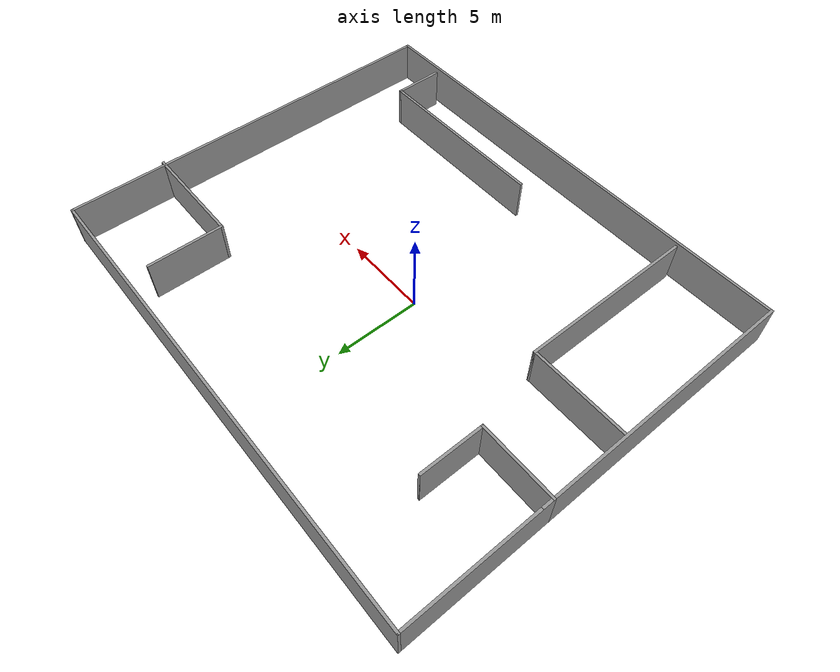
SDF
<?xml version='1.0'?>
<sdf version='1.6'>
  <model name='trytobe'>
    <pose frame=''>1.29991 -0.28275 0 0 -0 0</pose>
    <link name='Wall_10'>
      <collision name='Wall_10_Collision'>
        <geometry>
          <box>
            <size>4.5 0.15 2.5</size>
          </box>
        </geometry>
        <pose frame=''>0 0 1.25 0 -0 0</pose>
      </collision>
      <visual name='Wall_10_Visual'>
        <pose frame=''>0 0 1.25 0 -0 0</pose>
        <geometry>
          <box>
            <size>4.5 0.15 2.5</size>
          </box>
        </geometry>
        <material>
          <script>
            <uri>file://media/materials/scripts/gazebo.material</uri>
            <name>Gazebo/Grey</name>
          </script>
          <ambient>1 1 1 1</ambient>
        </material>
        <meta>
          <layer>0</layer>
        </meta>
      </visual>
      <pose frame=''>-11.9764 3.45 0 0 -0 0</pose>
    </link>
    <link name='Wall_11'>
      <collision name='Wall_11_Collision'>
        <geometry>
          <box>
            <size>3.75 0.15 2.5</size>
          </box>
        </geometry>
        <pose frame=''>0 0 1.25 0 -0 0</pose>
      </collision>
      <visual name='Wall_11_Visual'>
        <pose frame=''>0 0 1.25 0 -0 0</pose>
        <geometry>
          <box>
            <size>3.75 0.15 2.5</size>
          </box>
        </geometry>
        <material>
          <script>
            <uri>file://media/materials/scripts/gazebo.material</uri>
            <name>Gazebo/Grey</name>
          </script>
          <ambient>1 1 1 1</ambient>
        </material>
        <meta>
          <layer>0</layer>
        </meta>
      </visual>
      <pose frame=''>-9.80141 5.25 0 0 -0 1.5708</pose>
    </link>
    <link name='Wall_12'>
      <collision name='Wall_12_Collision'>
        <geometry>
          <box>
            <size>0.15 0.15 2.5</size>
          </box>
        </geometry>
        <pose frame=''>0 0 1.25 0 -0 0</pose>
      </collision>
      <visual name='Wall_12_Visual'>
        <pose frame=''>0 0 1.25 0 -0 0</pose>
        <geometry>
          <box>
            <size>0.15 0.15 2.5</size>
          </box>
        </geometry>
        <material>
          <script>
            <uri>file://media/materials/scripts/gazebo.material</uri>
            <name>Gazebo/Grey</name>
          </script>
          <ambient>1 1 1 1</ambient>
        </material>
        <meta>
          <layer>0</layer>
        </meta>
      </visual>
      <pose frame=''>-9.80141 7.05 0 0 -0 0</pose>
    </link>
    <link name='Wall_14'>
      <collision name='Wall_14_Collision'>
        <geometry>
          <box>
            <size>5.75 0.15 2.5</size>
          </box>
        </geometry>
        <pose frame=''>0 0 1.25 0 -0 0</pose>
      </collision>
      <visual name='Wall_14_Visual'>
        <pose frame=''>0 0 1.25 0 -0 0</pose>
        <geometry>
          <box>
            <size>5.75 0.15 2.5</size>
          </box>
        </geometry>
        <material>
          <script>
            <uri>file://media/materials/scripts/gazebo.material</uri>
            <name>Gazebo/Grey</name>
          </script>
          <ambient>1 1 1 1</ambient>
        </material>
        <meta>
          <layer>0</layer>
        </meta>
      </visual>
      <pose frame=''>-11.2899 -1.11834 0 0 -0 0</pose>
    </link>
    <link name='Wall_15'>
      <collision name='Wall_15_Collision'>
        <geometry>
          <box>
            <size>10.5 0.15 2.5</size>
          </box>
        </geometry>
        <pose frame=''>0 0 1.25 0 -0 0</pose>
      </collision>
      <visual name='Wall_15_Visual'>
        <pose frame=''>0 0 1.25 0 -0 0</pose>
        <geometry>
          <box>
            <size>10.5 0.15 2.5</size>
          </box>
        </geometry>
        <material>
          <script>
            <uri>file://media/materials/scripts/gazebo.material</uri>
            <name>Gazebo/Grey</name>
          </script>
          <ambient>1 1 1 1</ambient>
        </material>
        <meta>
          <layer>0</layer>
        </meta>
      </visual>
      <pose frame=''>-8.48988 -6.29334 0 0 -0 -1.5708</pose>
    </link>
    <link name='Wall_17'>
      <collision name='Wall_17_Collision'>
        <geometry>
          <box>
            <size>3 0.15 2.5</size>
          </box>
        </geometry>
        <pose frame=''>0 0 1.25 0 -0 0</pose>
      </collision>
      <visual name='Wall_17_Visual'>
        <pose frame=''>0 0 1.25 0 -0 0</pose>
        <geometry>
          <box>
            <size>3 0.15 2.5</size>
          </box>
        </geometry>
        <material>
          <script>
            <uri>file://media/materials/scripts/gazebo.material</uri>
            <name>Gazebo/Grey</name>
          </script>
          <ambient>1 1 1 1</ambient>
        </material>
        <meta>
          <layer>0</layer>
        </meta>
      </visual>
      <pose frame=''>10.5828 -9.90697 0 0 -0 1.5708</pose>
    </link>
    <link name='Wall_18'>
      <collision name='Wall_18_Collision'>
        <geometry>
          <box>
            <size>10.75 0.15 2.5</size>
          </box>
        </geometry>
        <pose frame=''>0 0 1.25 0 -0 0</pose>
      </collision>
      <visual name='Wall_18_Visual'>
        <pose frame=''>0 0 1.25 0 -0 0</pose>
        <geometry>
          <box>
            <size>10.75 0.15 2.5</size>
          </box>
        </geometry>
        <material>
          <script>
            <uri>file://media/materials/scripts/gazebo.material</uri>
            <name>Gazebo/Grey</name>
          </script>
          <ambient>1 1 1 1</ambient>
        </material>
        <meta>
          <layer>0</layer>
        </meta>
      </visual>
      <pose frame=''>5.2828 -8.48197 0 0 -0 3.14159</pose>
    </link>
    <link name='Wall_20'>
      <collision name='Wall_20_Collision'>
        <geometry>
          <box>
            <size>6.5 0.15 2.5</size>
          </box>
        </geometry>
        <pose frame=''>0 0 1.25 0 -0 0</pose>
      </collision>
      <visual name='Wall_20_Visual'>
        <pose frame=''>0 0 1.25 0 -0 0</pose>
        <geometry>
          <box>
            <size>6.5 0.15 2.5</size>
          </box>
        </geometry>
        <material>
          <script>
            <uri>file://media/materials/scripts/gazebo.material</uri>
            <name>Gazebo/Grey</name>
          </script>
          <ambient>1 1 1 1</ambient>
        </material>
        <meta>
          <layer>0</layer>
        </meta>
      </visual>
      <pose frame=''>10.9764 6.14195 0 0 -0 3.14159</pose>
    </link>
    <link name='Wall_21'>
      <collision name='Wall_21_Collision'>
        <geometry>
          <box>
            <size>4.5 0.15 2.5</size>
          </box>
        </geometry>
        <pose frame=''>0 0 1.25 0 -0 0</pose>
      </collision>
      <visual name='Wall_21_Visual'>
        <pose frame=''>0 0 1.25 0 -0 0</pose>
        <geometry>
          <box>
            <size>4.5 0.15 2.5</size>
          </box>
        </geometry>
        <material>
          <script>
            <uri>file://media/materials/scripts/gazebo.material</uri>
            <name>Gazebo/Grey</name>
          </script>
          <ambient>1 1 1 1</ambient>
        </material>
        <meta>
          <layer>0</layer>
        </meta>
      </visual>
      <pose frame=''>7.80141 8.31695 0 0 -0 1.5708</pose>
    </link>
    <link name='Wall_5'>
      <collision name='Wall_5_Collision'>
        <geometry>
          <box>
            <size>16 0.15 2.5</size>
          </box>
        </geometry>
        <pose frame=''>0 0 1.25 0 -0 0</pose>
      </collision>
      <visual name='Wall_5_Visual'>
        <pose frame=''>0 0 1.25 0 -0 0</pose>
        <geometry>
          <box>
            <size>16 0.15 2.5</size>
          </box>
        </geometry>
        <material>
          <script>
            <uri>file://media/materials/scripts/gazebo.material</uri>
            <name>Gazebo/Grey</name>
          </script>
          <ambient>1 1 1 1</ambient>
        </material>
        <meta>
          <layer>0</layer>
        </meta>
      </visual>
      <pose frame=''>-14.1514 -3.875 0 0 -0 -1.5708</pose>
    </link>
    <link name='Wall_6'>
      <collision name='Wall_6_Collision'>
        <geometry>
          <box>
            <size>28.25 0.15 2.5</size>
          </box>
        </geometry>
        <pose frame=''>0 0 1.25 0 -0 0</pose>
      </collision>
      <visual name='Wall_6_Visual'>
        <pose frame=''>0 0 1.25 0 -0 0</pose>
        <geometry>
          <box>
            <size>28.25 0.15 2.5</size>
          </box>
        </geometry>
        <material>
          <script>
            <uri>file://media/materials/scripts/gazebo.material</uri>
            <name>Gazebo/Grey</name>
          </script>
          <ambient>1 1 1 1</ambient>
        </material>
        <meta>
          <layer>0</layer>
        </meta>
      </visual>
      <pose frame=''>-0.101411 -11.8 0 0 -0 0</pose>
    </link>
    <link name='Wall_7'>
      <collision name='Wall_7_Collision'>
        <geometry>
          <box>
            <size>23.75 0.15 2.5</size>
          </box>
        </geometry>
        <pose frame=''>0 0 1.25 0 -0 0</pose>
      </collision>
      <visual name='Wall_7_Visual'>
        <pose frame=''>0 0 1.25 0 -0 0</pose>
        <geometry>
          <box>
            <size>23.75 0.15 2.5</size>
          </box>
        </geometry>
        <material>
          <script>
            <uri>file://media/materials/scripts/gazebo.material</uri>
            <name>Gazebo/Grey</name>
          </script>
          <ambient>1 1 1 1</ambient>
        </material>
        <meta>
          <layer>0</layer>
        </meta>
      </visual>
      <pose frame=''>13.9486 0 0 0 -0 1.5708</pose>
    </link>
    <link name='Wall_8'>
      <collision name='Wall_8_Collision'>
        <geometry>
          <box>
            <size>28.25 0.15 2.5</size>
          </box>
        </geometry>
        <pose frame=''>0 0 1.25 0 -0 0</pose>
      </collision>
      <visual name='Wall_8_Visual'>
        <pose frame=''>0 0 1.25 0 -0 0</pose>
        <geometry>
          <box>
            <size>28.25 0.15 2.5</size>
          </box>
        </geometry>
        <material>
          <script>
            <uri>file://media/materials/scripts/gazebo.material</uri>
            <name>Gazebo/Grey</name>
          </script>
          <ambient>1 1 1 1</ambient>
        </material>
        <meta>
          <layer>0</layer>
        </meta>
      </visual>
      <pose frame=''>-0.101411 11.8 0 0 -0 3.14159</pose>
    </link>
    <link name='Wall_9'>
      <collision name='Wall_9_Collision'>
        <geometry>
          <box>
            <size>8.5 0.15 2.5</size>
          </box>
        </geometry>
        <pose frame=''>0 0 1.25 0 -0 0</pose>
      </collision>
      <visual name='Wall_9_Visual'>
        <pose frame=''>0 0 1.25 0 -0 0</pose>
        <geometry>
          <box>
            <size>8.5 0.15 2.5</size>
          </box>
        </geometry>
        <material>
          <script>
            <uri>file://media/materials/scripts/gazebo.material</uri>
            <name>Gazebo/Grey</name>
          </script>
          <ambient>1 1 1 1</ambient>
        </material>
        <meta>
          <layer>0</layer>
        </meta>
      </visual>
      <pose frame=''>-14.1514 7.625 0 0 -0 -1.5708</pose>
    </link>
    <static>1</static>
  </model>
</sdf>
